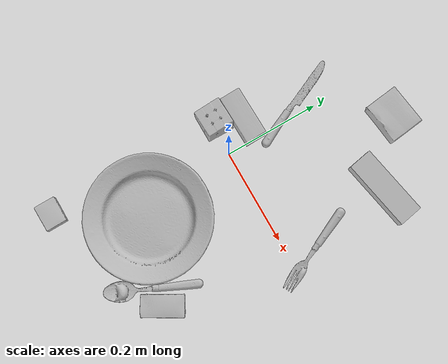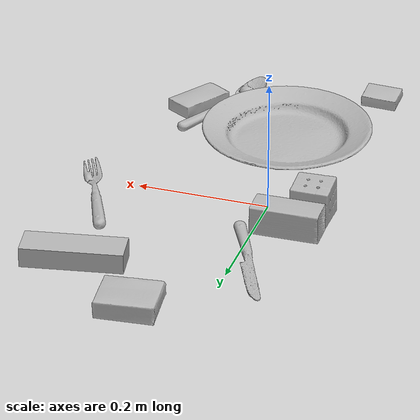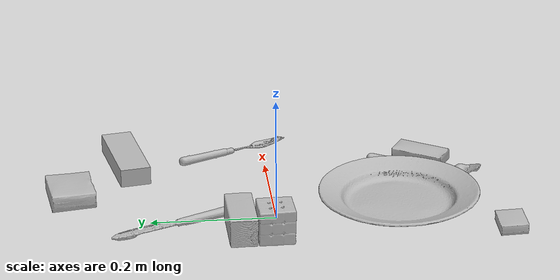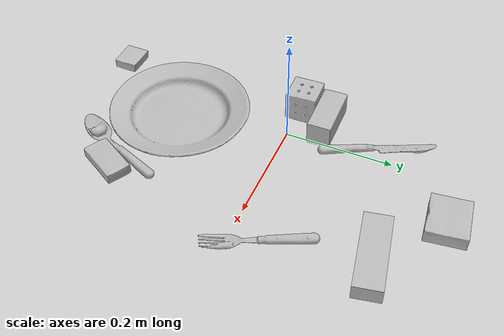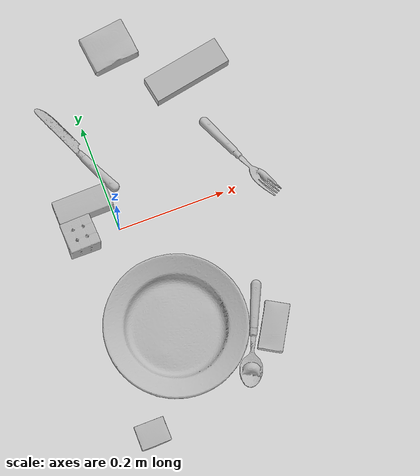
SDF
<sdf version="1.4">
  <world name="default">
    <light name="light1" type="point">
      <pose>0 0 1 0 0 0</pose>
      <diffuse>3 3 3 1</diffuse>
      <specular>3 3 3 1</specular>
    </light>
    <light name="light2" type="point">
      <pose>0 0.5 2 0 0 0</pose>
      <diffuse>1 1 1 1</diffuse>
      <specular>1 1 1 1</specular>
    </light>
    <light name="light3" type="point">
      <pose>0 0.5 2 0 0 0</pose>
      <diffuse>3 3 3 1</diffuse>
      <specular>3 3 3 1</specular>
    </light>
    <scene>
      <ambient>0.7 0.7 0.7</ambient>
    </scene>
    <model name="box11">
      <link name="link_box11">
        <collision name="default">
          <geometry>
            <mesh>
              <uri>model://jenga/collision_meshes/collision.obj</uri>
              <scale>1.0 1.0 1.0</scale>
            </mesh>
          </geometry>
          <surface>
            <friction>
              <ode>
                <mu>0.5</mu>
                <mu2>0.5</mu2>
              </ode>
            </friction>
          <contact>
        <ode>
            <max_vel>0</max_vel>
            <min_depth>0.0001</min_depth>
            <kp>1e8</kp>
        </ode>
    </contact></surface>
        </collision>
        <visual name="default">
          <geometry>
            <mesh>
              <uri>model://jenga/visual_meshes/visual.dae</uri>
              <scale>1.0 1.0 1.0</scale>
            </mesh>
          </geometry>
        </visual>
        <inertial>
          <mass>0.24099597334861755</mass>
          <pose>-2.502855807051674e-07 -0.00010250010382151231 -4.0923401684267446e-05 0.0 -7.34215461761844e-07 0.0</pose>
          <inertia>
            <ixx>6.668944e-05</ixx>
            <iyy>0.0004518858</iyy>
            <izz>0.00048242652</izz>
            <ixy>0</ixy>
            <ixz>0</ixz>
            <iyz>0</iyz>
          </inertia>
        </inertial>
      </link>
      <pose>0.21517829596996307 0.23137272894382477 0.014999999664723873 2.081987578050195e-08 -2.2651119856335644e-09 0.18724493664566652</pose>
    </model>
    <model name="box12">
      <link name="link_box12">
        <collision name="default">
          <geometry>
            <mesh>
              <uri>model://wood_block/collision_meshes/collision.obj</uri>
              <scale>0.5 0.5 0.5</scale>
            </mesh>
          </geometry>
          <surface>
            <friction>
              <ode>
                <mu>0.5</mu>
                <mu2>0.5</mu2>
              </ode>
            </friction>
          <contact>
        <ode>
            <max_vel>0</max_vel>
            <min_depth>0.0001</min_depth>
            <kp>1e8</kp>
        </ode>
    </contact></surface>
        </collision>
        <visual name="default">
          <geometry>
            <mesh>
              <uri>model://wood_block/visual_meshes/visual.dae</uri>
              <scale>0.5 0.5 0.5</scale>
            </mesh>
          </geometry>
        </visual>
        <inertial>
          <mass>0.14152581989765167</mass>
          <pose>-2.9066577553749084e-06 -0.000285404734313488 0.00013204291462898254 -0.05220812938960465 -0.005192695343712196 -0.006861377662393293</pose>
          <inertia>
            <ixx>4.7345737e-05</ixx>
            <iyy>0.0001495652</iyy>
            <izz>0.00014900575</izz>
            <ixy>0</ixy>
            <ixz>0</ixz>
            <iyz>0</iyz>
          </inertia>
        </inertial>
      </link>
      <pose>-0.04780838266015053 0.059613149613142014 0.022629264742136 -0.0052086773407212595 0.005718746150872752 -3.116094783180024</pose>
    </model>
    <model name="box13">
      <link name="link_box13">
        <collision name="default">
          <geometry>
            <mesh>
              <uri>model://sugar_box/collision_meshes/collision.obj</uri>
              <scale>0.5 0.5 0.5</scale>
            </mesh>
          </geometry>
          <surface>
            <friction>
              <ode>
                <mu>0.5</mu>
                <mu2>0.5</mu2>
              </ode>
            </friction>
          <contact>
        <ode>
            <max_vel>0</max_vel>
            <min_depth>0.0001</min_depth>
            <kp>1e8</kp>
        </ode>
    </contact></surface>
        </collision>
        <visual name="default">
          <geometry>
            <mesh>
              <uri>model://sugar_box/visual_meshes/visual.dae</uri>
              <scale>0.5 0.5 0.5</scale>
            </mesh>
          </geometry>
        </visual>
        <inertial>
          <mass>0.08336380124092102</mass>
          <pose>0.0005171863595023751 1.924554817378521e-05 -0.00018182402709499002 -0.0004046263001201691 0.0010506636386254094 0.0026153790217303746</pose>
          <inertia>
            <ixx>1.7364619e-05</ixx>
            <iyy>5.612603e-05</iyy>
            <izz>6.718955e-05</izz>
            <ixy>0</ixy>
            <ixz>0</ixz>
            <iyz>0</iyz>
          </inertia>
        </inertial>
      </link>
      <pose>0.19578292965888977 -0.26307252049446106 0.011399303562939167 0.0007754282341446491 -0.023433290743871436 1.0416929182845291</pose>
    </model>
    <model name="box21">
      <link name="link_box21">
        <collision name="default">
          <geometry>
            <mesh>
              <uri>model://pudding_box/collision_meshes/collision.obj</uri>
              <scale>0.5 0.5 0.5</scale>
            </mesh>
          </geometry>
          <surface>
            <friction>
              <ode>
                <mu>0.5</mu>
                <mu2>0.5</mu2>
              </ode>
            </friction>
          <contact>
        <ode>
            <max_vel>0</max_vel>
            <min_depth>0.0001</min_depth>
            <kp>1e8</kp>
        </ode>
    </contact></surface>
        </collision>
        <visual name="default">
          <geometry>
            <mesh>
              <uri>model://pudding_box/visual_meshes/visual.dae</uri>
              <scale>0.5 0.5 0.5</scale>
            </mesh>
          </geometry>
        </visual>
        <inertial>
          <mass>0.025778822600841522</mass>
          <pose>0.00024474109522998333 0.00040339428232982755 -0.0002594413817860186 0.005213100851918505 -0.006603799640504885 0.02007982516037135</pose>
          <inertia>
            <ixx>7.285408e-06</ixx>
            <iyy>4.901674e-06</iyy>
            <izz>1.07588085e-05</izz>
            <ixy>0</ixy>
            <ixz>0</ixz>
            <iyz>0</iyz>
          </inertia>
        </inertial>
      </link>
      <pose>-0.07205464690923691 -0.36613789200782776 0.009862909093499184 0.022349480734544586 -0.011391204326413018 -1.5620429172494248</pose>
    </model>
    <model name="box22">
      <link name="link_box22">
        <collision name="default">
          <geometry>
            <mesh>
              <uri>model://rubiks_cube/collision_meshes/collision.obj</uri>
              <scale>1.0 1.0 1.0</scale>
            </mesh>
          </geometry>
          <surface>
            <friction>
              <ode>
                <mu>0.5</mu>
                <mu2>0.5</mu2>
              </ode>
            </friction>
          <contact>
        <ode>
            <max_vel>0</max_vel>
            <min_depth>0.0001</min_depth>
            <kp>1e8</kp>
        </ode>
    </contact></surface>
        </collision>
        <visual name="default">
          <geometry>
            <mesh>
              <uri>model://rubiks_cube/visual_meshes/visual.dae</uri>
              <scale>1.0 1.0 1.0</scale>
            </mesh>
          </geometry>
        </visual>
        <inertial>
          <mass>0.22147096693515778</mass>
          <pose>2.6721041649580002e-05 5.256967051536776e-05 -7.264316082000732e-06 -0.05467273282600652 -0.09814100107642566 -0.034457018786431724</pose>
          <inertia>
            <ixx>0.00012237758</ixx>
            <iyy>0.00012180688</iyy>
            <izz>0.00012339167</izz>
            <ixy>0</ixy>
            <ixz>0</ixz>
            <iyz>0</iyz>
          </inertia>
        </inertial>
      </link>
      <pose>-0.07040681689977646 0.007097451947629452 0.028679000213742256 -1.6453123105461725e-06 4.6741863904879595e-07 -1.5386275572533616</pose>
    </model>
    <model name="box23">
      <link name="link_box23">
        <collision name="default">
          <geometry>
            <mesh>
              <uri>model://gelatin_box/collision_meshes/collision.obj</uri>
              <scale>1.0 1.0 1.0</scale>
            </mesh>
          </geometry>
          <surface>
            <friction>
              <ode>
                <mu>0.5</mu>
                <mu2>0.5</mu2>
              </ode>
            </friction>
          <contact>
        <ode>
            <max_vel>0</max_vel>
            <min_depth>0.0001</min_depth>
            <kp>1e8</kp>
        </ode>
    </contact></surface>
        </collision>
        <visual name="default">
          <geometry>
            <mesh>
              <uri>model://gelatin_box/visual_meshes/visual.dae</uri>
              <scale>1.0 1.0 1.0</scale>
            </mesh>
          </geometry>
        </visual>
        <inertial>
          <mass>0.20053431391716003</mass>
          <pose>0.0004319618456065655 0.00011156871914863586 -0.00036403207923285663 -0.001050372330881514 -0.004755818219920532 0.016440563197859918</pose>
          <inertia>
            <ixx>0.00014156084</ixx>
            <iyy>0.00010111618</iyy>
            <izz>0.00021548718</izz>
            <ixy>0</ixy>
            <ixz>0</ixz>
            <iyz>0</iyz>
          </inertia>
        </inertial>
      </link>
      <pose>0.09813939779996872 0.32428470253944397 0.015168312005698681 0.005596970528026645 -0.0073041191740108235 -1.455199593023832</pose>
    </model>
    <model name="plate1">
      <link name="link_plate1">
        <collision name="default">
          <geometry>
            <mesh>
              <uri>model://plate/collision_meshes/collision.obj</uri>
              <scale>1.0 1.0 1.0</scale>
            </mesh>
          </geometry>
          <surface>
            <friction>
              <ode>
                <mu>0.5</mu>
                <mu2>0.5</mu2>
              </ode>
            </friction>
          <contact>
        <ode>
            <max_vel>0</max_vel>
            <min_depth>0.0001</min_depth>
            <kp>1e8</kp>
        </ode>
    </contact></surface>
        </collision>
        <visual name="default">
          <geometry>
            <mesh>
              <uri>model://plate/visual_meshes/visual.dae</uri>
              <scale>1.0 1.0 1.0</scale>
            </mesh>
          </geometry>
        </visual>
        <inertial>
          <mass>0.1705944687128067</mass>
          <pose>-0.0006044638575986028 0.0002782570372801274 -0.0010561983799561858 0.002218806973518856 -0.003225464946202784 0.4526031622217862</pose>
          <inertia>
            <ixx>0.0007980444</ixx>
            <iyy>0.0007904114</iyy>
            <izz>0.0015608557</izz>
            <ixy>0</ixy>
            <ixz>0</ixz>
            <iyz>0</iyz>
          </inertia>
        </inertial>
      </link>
      <pose>0.03317886218428612 -0.20217067003250122 0.013733006082475185 3.966540416162271e-09 2.6877212998960725e-08 -2.094895367858367</pose>
    </model>
    <model name="silverware1">
      <link name="link_silverware1">
        <collision name="default">
          <geometry>
            <mesh>
              <uri>model://fork/collision_meshes/collision.obj</uri>
              <scale>1.0 1.0 1.0</scale>
            </mesh>
          </geometry>
          <surface>
            <friction>
              <ode>
                <mu>0.5</mu>
                <mu2>0.5</mu2>
              </ode>
            </friction>
          <contact>
        <ode>
            <max_vel>0</max_vel>
            <min_depth>0.0001</min_depth>
            <kp>1e8</kp>
        </ode>
    </contact></surface>
        </collision>
        <visual name="default">
          <geometry>
            <mesh>
              <uri>model://fork/visual_meshes/visual.dae</uri>
              <scale>1.0 1.0 1.0</scale>
            </mesh>
          </geometry>
        </visual>
        <inertial>
          <mass>0.02693658135831356</mass>
          <pose>-0.02957003191113472 0.00046588244731538 0.0003218860365450382 -0.013551533598057301 -0.010977833518912038 0.014453896181446386</pose>
          <inertia>
            <ixx>9.442797e-07</ixx>
            <iyy>7.032368e-05</iyy>
            <izz>7.074603e-05</izz>
            <ixy>0</ixy>
            <ixz>0</ixz>
            <iyz>0</iyz>
          </inertia>
        </inertial>
      </link>
      <pose>0.2500094175338745 0.05187832564115524 0.0057470533065497875 -0.19095805380537126 0.024090103912751862 -1.1487026893129937</pose>
    </model>
    <model name="silverware2">
      <link name="link_silverware2">
        <collision name="default">
          <geometry>
            <mesh>
              <uri>model://knife/collision_meshes/collision.obj</uri>
              <scale>1.0 1.0 1.0</scale>
            </mesh>
          </geometry>
          <surface>
            <friction>
              <ode>
                <mu>0.5</mu>
                <mu2>0.5</mu2>
              </ode>
            </friction>
          <contact>
        <ode>
            <max_vel>0</max_vel>
            <min_depth>0.0001</min_depth>
            <kp>1e8</kp>
        </ode>
    </contact></surface>
        </collision>
        <visual name="default">
          <geometry>
            <mesh>
              <uri>model://knife/visual_meshes/visual.dae</uri>
              <scale>1.0 1.0 1.0</scale>
            </mesh>
          </geometry>
        </visual>
        <inertial>
          <mass>0.029087698087096214</mass>
          <pose>-0.023785242810845375 0.0015275123296305537 5.0620237743714824e-05 0.07305335090844457 0.017248415402536993 -0.007409830271159857</pose>
          <inertia>
            <ixx>8.256269e-07</ixx>
            <iyy>0.00011175022</iyy>
            <izz>0.00011201614</izz>
            <ixy>0</ixy>
            <ixz>0</ixz>
            <iyz>0</iyz>
          </inertia>
        </inertial>
      </link>
      <pose>-0.021023869514465332 0.1664516180753708 0.007946521043777466 -0.023907752973251966 -0.014542522450561828 1.9931775219165975</pose>
    </model>
    <model name="silverware3">
      <link name="link_silverware3">
        <collision name="default">
          <geometry>
            <mesh>
              <uri>model://spoon/collision_meshes/collision.obj</uri>
              <scale>1.0 1.0 1.0</scale>
            </mesh>
          </geometry>
          <surface>
            <friction>
              <ode>
                <mu>0.5</mu>
                <mu2>0.5</mu2>
              </ode>
            </friction>
          <contact>
        <ode>
            <max_vel>0</max_vel>
            <min_depth>0.0001</min_depth>
            <kp>1e8</kp>
        </ode>
    </contact></surface>
        </collision>
        <visual name="default">
          <geometry>
            <mesh>
              <uri>model://spoon/visual_meshes/visual.dae</uri>
              <scale>1.0 1.0 1.0</scale>
            </mesh>
          </geometry>
        </visual>
        <inertial>
          <mass>0.04163059964776039</mass>
          <pose>-0.005526324268430471 -0.001603418029844761 -0.0007271656068041921 0.035215733596471024 -0.03906582179646946 0.006150610371924991</pose>
          <inertia>
            <ixx>2.3155617e-06</ixx>
            <iyy>0.00015840305</iyy>
            <izz>0.00015954502</izz>
            <ixy>0</ixy>
            <ixz>0</ixz>
            <iyz>0</iyz>
          </inertia>
        </inertial>
      </link>
      <pose>0.15867185592651367 -0.2636367976665497 0.008385264314711094 0.006729186793938074 0.02689299820993655 -1.9946484230754837</pose>
    </model>
  <physics type="ode">
      <max_contacts>50</max_contacts>
      <ode>
        <solver>
          <type>quick</type>
          <iters>75</iters>
        </solver>
        <constraints>
          <contact_max_correcting_vel>0</contact_max_correcting_vel>
          <contact_surface_layer>0</contact_surface_layer>
        </constraints>
      </ode>
    </physics></world>
</sdf>
